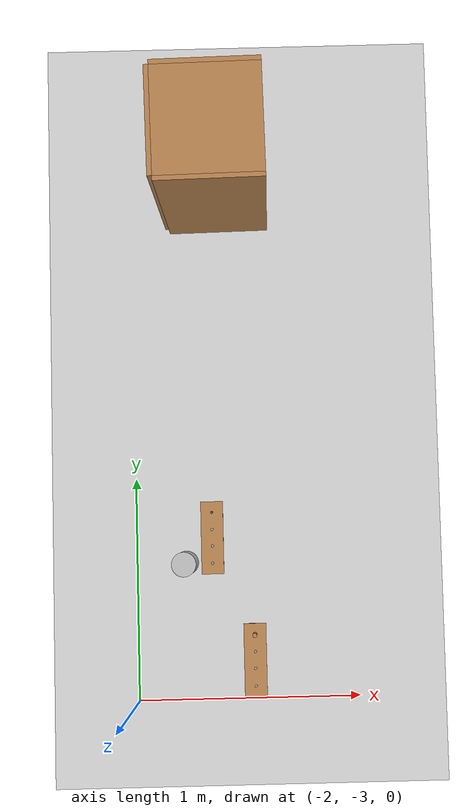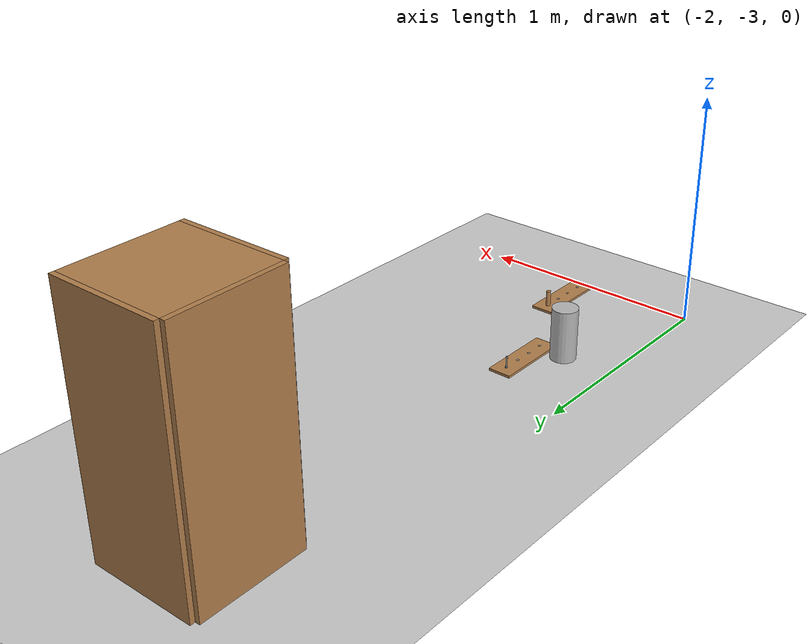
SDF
<sdf version="1.6">
 <world name="default">
  <model name="ground_plane">
   <static>1</static>
   <link name="link">
    <collision name="collision">
     <geometry><plane><normal>0 0 1</normal><size>100 100</size></plane></geometry>
     <surface><friction><ode><mu>100</mu><mu2>50</mu2></ode></friction></surface>
    </collision>
    <visual name="visual">
     <cast_shadows>0</cast_shadows>
     <geometry><plane><normal>0 0 1</normal><size>100 100</size></plane></geometry>
     <material>
      <script><uri>file://media/materials/scripts/gazebo.material</uri><name>Gazebo/Grey</name></script>
     </material>
    </visual>
   </link>
  </model>
  <model name="cabinet">
   <static>1</static>
   <link name="cabinet_bottom_plate">
    <inertial>
     <pose>0 0 -1 0 -0 0</pose>
     <inertia><ixx>2.05</ixx><ixy>0</ixy><ixz>0</ixz><iyy>2.05</iyy><iyz>0</iyz><izz>2.05</izz></inertia>
     <mass>25</mass>
    </inertial>
    <collision name="cabinet_bottom_plate_geom">
     <pose>0 0 0.01 0 -0 0</pose>
     <geometry><box><size>0.45 0.45 0.02</size></box></geometry>
    </collision>
    <visual name="cabinet_bottom_plate_geom_visual">
     <pose>0 0 0.01 0 -0 0</pose>
     <geometry><box><size>0.45 0.45 0.02</size></box></geometry>
     <material>
      <script><uri>file://media/materials/scripts/gazebo.material</uri><name>Gazebo/Wood</name></script>
     </material>
    </visual>
    <collision name="cabinet_bottom_plate_geom_cabinet_back_plate">
     <pose>0.235 0 0.51 0 -0 0</pose>
     <geometry><box><size>0.02 0.45 1.02</size></box></geometry>
    </collision>
    <visual name="cabinet_bottom_plate_geom_cabinet_back_plate_visual">
     <pose>0.235 0 0.51 0 -0 0</pose>
     <geometry><box><size>0.02 0.45 1.02</size></box></geometry>
     <material>
      <script><uri>file://media/materials/scripts/gazebo.material</uri><name>Gazebo/Wood</name></script>
     </material>
    </visual>
    <collision name="cabinet_bottom_plate_geom_cabinet_left_plate">
     <pose>0 0.235 0.51 0 -0 0</pose>
     <geometry><box><size>0.45 0.02 1.02</size></box></geometry>
    </collision>
    <visual name="cabinet_bottom_plate_geom_cabinet_left_plate_visual">
     <pose>0 0.235 0.51 0 -0 0</pose>
     <geometry><box><size>0.45 0.02 1.02</size></box></geometry>
     <material>
      <script><uri>file://media/materials/scripts/gazebo.material</uri><name>Gazebo/Wood</name></script>
     </material>
    </visual>
    <collision name="cabinet_bottom_plate_geom_cabinet_middle_plate">
     <pose>0 0 0.51 0 -0 0</pose>
     <geometry><box><size>0.45 0.45 0.02</size></box></geometry>
    </collision>
    <visual name="cabinet_bottom_plate_geom_cabinet_middle_plate_visual">
     <pose>0 0 0.51 0 -0 0</pose>
     <geometry><box><size>0.45 0.45 0.02</size></box></geometry>
     <material>
      <script><uri>file://media/materials/scripts/gazebo.material</uri><name>Gazebo/Wood</name></script>
     </material>
    </visual>
    <collision name="cabinet_bottom_plate_geom_cabinet_right_plate">
     <pose>0 -0.235 0.51 0 -0 0</pose>
     <geometry><box><size>0.45 0.02 1.02</size></box></geometry>
    </collision>
    <visual name="cabinet_bottom_plate_geom_cabinet_right_plate_visual">
     <pose>0 -0.235 0.51 0 -0 0</pose>
     <geometry><box><size>0.45 0.02 1.02</size></box></geometry>
     <material>
      <script><uri>file://media/materials/scripts/gazebo.material</uri><name>Gazebo/Wood</name></script>
     </material>
    </visual>
    <collision name="cabinet_bottom_plate_geom_cabinet_top_plate">
     <pose>0 0 1.01 0 -0 0</pose>
     <geometry><box><size>0.45 0.45 0.02</size></box></geometry>
    </collision>
    <visual name="cabinet_bottom_plate_geom_cabinet_top_plate_visual">
     <pose>0 0 1.01 0 -0 0</pose>
     <geometry><box><size>0.45 0.45 0.02</size></box></geometry>
     <material>
      <script><uri>file://media/materials/scripts/gazebo.material</uri><name>Gazebo/Wood</name></script>
     </material>
    </visual>
   </link>
   <pose>-1.60346 -0.606793 0 0 0 -3.12567</pose>
  </model>
  <model name="my_ball">
   <link name="link_0">
    <inertial>
     <mass>1</mass>
     <inertia><ixx>0.1</ixx><ixy>0</ixy><ixz>0</ixz><iyy>0.1</iyy><iyz>0</iyz><izz>0.1</izz></inertia>
    </inertial>
    <visual name="visual">
     <geometry><sphere><radius>0.1</radius></sphere></geometry>
     <material>
      <lighting>1</lighting>
      <script><uri>file://media/materials/scripts/gazebo.material</uri><name>Gazebo/Grey</name></script>
      <shader type="pixel"><normal_map>__default__</normal_map></shader>
      <ambient>1 1 1 1</ambient>
      <diffuse>1 1 1 1</diffuse>
      <specular>1 1 1 1</specular>
      <emissive>0 0 0 1</emissive>
     </material>
    </visual>
    <collision name="collision">
     <geometry><sphere><radius>0.1</radius></sphere></geometry>
     <surface>
      <friction>
       <ode><mu>1</mu><mu2>1</mu2><fdir1>0 0 0</fdir1><slip1>0</slip1><slip2>0</slip2></ode>
       <torsional>
        <coefficient>1</coefficient>
        <patch_radius>0</patch_radius>
        <surface_radius>0</surface_radius>
        <use_patch_radius>1</use_patch_radius>
        <ode><slip>0</slip></ode>
       </torsional>
      </friction>
      <bounce><restitution_coefficient>0</restitution_coefficient><threshold>1e+06</threshold></bounce>
      <contact>
       <collide_without_contact>0</collide_without_contact>
       <collide_without_contact_bitmask>1</collide_without_contact_bitmask>
       <collide_bitmask>1</collide_bitmask>
       <ode>
        <soft_cfm>0</soft_cfm>
        <soft_erp>0.2</soft_erp>
        <kp>1e+13</kp>
        <kd>1</kd>
        <max_vel>0.01</max_vel>
        <min_depth>0</min_depth>
       </ode>
       <bullet>
        <split_impulse>1</split_impulse>
        <split_impulse_penetration_threshold>-0.01</split_impulse_penetration_threshold>
        <soft_cfm>0</soft_cfm>
        <soft_erp>0.2</soft_erp>
        <kp>1e+13</kp>
        <kd>1</kd>
       </bullet>
      </contact>
     </surface>
    </collision>
   </link>
   <static>0</static>
   <pose>-1.50345 -0.493286 0.12 0.461158 0.001202 0.001684</pose>
  </model>
  <model name="my_ball_0">
   <link name="link_0">
    <inertial>
     <mass>1</mass>
     <inertia><ixx>0.1</ixx><ixy>0</ixy><ixz>0</ixz><iyy>0.1</iyy><iyz>0</iyz><izz>0.1</izz></inertia>
    </inertial>
    <visual name="visual">
     <geometry><sphere><radius>0.1</radius></sphere></geometry>
     <material>
      <lighting>1</lighting>
      <script><uri>file://media/materials/scripts/gazebo.material</uri><name>Gazebo/Grey</name></script>
      <shader type="pixel"><normal_map>__default__</normal_map></shader>
      <ambient>1 1 1 1</ambient>
      <diffuse>1 1 1 1</diffuse>
      <specular>1 1 1 1</specular>
      <emissive>0 0 0 1</emissive>
     </material>
    </visual>
    <collision name="collision">
     <geometry><sphere><radius>0.1</radius></sphere></geometry>
     <surface>
      <friction>
       <ode><mu>1</mu><mu2>1</mu2><fdir1>0 0 0</fdir1><slip1>0</slip1><slip2>0</slip2></ode>
       <torsional>
        <coefficient>1</coefficient>
        <patch_radius>0</patch_radius>
        <surface_radius>0</surface_radius>
        <use_patch_radius>1</use_patch_radius>
        <ode><slip>0</slip></ode>
       </torsional>
      </friction>
      <bounce><restitution_coefficient>0</restitution_coefficient><threshold>1e+06</threshold></bounce>
      <contact>
       <collide_without_contact>0</collide_without_contact>
       <collide_without_contact_bitmask>1</collide_without_contact_bitmask>
       <collide_bitmask>1</collide_bitmask>
       <ode>
        <soft_cfm>0</soft_cfm>
        <soft_erp>0.2</soft_erp>
        <kp>1e+13</kp>
        <kd>1</kd>
        <max_vel>0.01</max_vel>
        <min_depth>0</min_depth>
       </ode>
       <bullet>
        <split_impulse>1</split_impulse>
        <split_impulse_penetration_threshold>-0.01</split_impulse_penetration_threshold>
        <soft_cfm>0</soft_cfm>
        <soft_erp>0.2</soft_erp>
        <kp>1e+13</kp>
        <kd>1</kd>
       </bullet>
      </contact>
     </surface>
    </collision>
   </link>
   <static>0</static>
   <pose>-1.52826 -0.730598 0.12 0.43637 -0.058735 0.008729</pose>
  </model>
  <model name="beer_2">
   <link name="link">
    <pose>0 0 0.115 0 -0 0</pose>
    <inertial>
     <mass>0.39</mass>
     <inertia><ixx>0.00058</ixx><ixy>0</ixy><ixz>0</ixz><iyy>0.00058</iyy><iyz>0</iyz><izz>0.00019</izz></inertia>
    </inertial>
    <collision name="collision">
     <geometry><cylinder><radius>0.055</radius><length>0.23</length></cylinder></geometry>
    </collision>
    <visual name="visual">
     <geometry><cylinder><radius>0.055</radius><length>0.23</length></cylinder></geometry>
     <material>
      <script>
       <uri>model://beer/materials/scripts</uri>
       <uri>model://beer/materials/textures</uri>
       <name>Beer/Diffuse</name>
      </script>
     </material>
    </visual>
   </link>
   <pose>-1.77801 -2.38525 -2e-06 1e-06 -0 -0.028053</pose>
  </model>
  <model name="metal_peg_board">
   <link name="wooden_board::base">
    <pose>0 0 0.00523 0 -0 0</pose>
    <inertial>
     <mass>0.2765</mass>
     <inertia>
      <ixx>0.0025148</ixx>
      <ixy>0</ixy>
      <ixz>0</ixz>
      <iyy>0.00024037</iyy>
      <iyz>0</iyz>
      <izz>0.00275013</izz>
     </inertia>
    </inertial>
    <collision name="collision">
     <geometry><box><size>0.1016 0.3302 0.01046</size></box></geometry>
     <surface>
      <contact>
       <poissons_ratio>0.347</poissons_ratio>
       <elastic_modulus>8.8e+09</elastic_modulus>
       <ode><kp>100000</kp><kd>100</kd><max_vel>100</max_vel><min_depth>0.001</min_depth></ode>
      </contact>
      <friction>
       <torsional>
        <coefficient>1</coefficient>
        <use_patch_radius>0</use_patch_radius>
        <surface_radius>0.01</surface_radius>
       </torsional>
      </friction>
     </surface>
    </collision>
    <visual name="visual">
     <geometry><box><size>0.1016 0.3302 0.01046</size></box></geometry>
     <material>
      <script><uri>file://media/materials/scripts/gazebo.material</uri><name>Gazebo/Wood</name></script>
     </material>
    </visual>
    <visual name="tee_nut_1">
     <pose>0 -0.116 0 0 -0 0</pose>
     <geometry><cylinder><radius>0.00635</radius><length>0.0105646</length></cylinder></geometry>
     <material>
      <script><uri>file://media/materials/scripts/gazebo.material</uri><name>Gazebo/Grey</name></script>
     </material>
    </visual>
    <visual name="tee_nut_2">
     <pose>0 -0.038 0 0 -0 0</pose>
     <geometry><cylinder><radius>0.00635</radius><length>0.0105646</length></cylinder></geometry>
     <material>
      <script><uri>file://media/materials/scripts/gazebo.material</uri><name>Gazebo/Grey</name></script>
     </material>
    </visual>
    <visual name="tee_nut_3">
     <pose>0 0.038 0 0 -0 0</pose>
     <geometry><cylinder><radius>0.00635</radius><length>0.0105646</length></cylinder></geometry>
     <material>
      <script><uri>file://media/materials/scripts/gazebo.material</uri><name>Gazebo/Grey</name></script>
     </material>
    </visual>
    <visual name="tee_nut_4">
     <pose>0 0.116 0 0 -0 0</pose>
     <geometry><cylinder><radius>0.00635</radius><length>0.0105646</length></cylinder></geometry>
     <material>
      <script><uri>file://media/materials/scripts/gazebo.material</uri><name>Gazebo/Grey</name></script>
     </material>
    </visual>
   </link>
   <link name="peg::link">
    <pose>0 0.116 0.031 0 -0 0</pose>
    <inertial>
     <mass>0.0121</mass>
     <inertia>
      <ixx>3.90898e-06</ixx>
      <ixy>0</ixy>
      <ixz>0</ixz>
      <iyy>3.90898e-06</iyy>
      <iyz>0</iyz>
      <izz>6.58845e-08</izz>
     </inertia>
    </inertial>
    <collision name="collision">
     <geometry><cylinder><radius>0.0033</radius><length>0.062</length></cylinder></geometry>
     <surface>
      <contact>
       <poissons_ratio>0.305</poissons_ratio>
       <elastic_modulus>2e+11</elastic_modulus>
       <ode><kp>100000</kp><kd>100</kd><max_vel>100</max_vel><min_depth>0.001</min_depth></ode>
      </contact>
      <friction>
       <torsional>
        <coefficient>1</coefficient>
        <use_patch_radius>0</use_patch_radius>
        <surface_radius>0.01</surface_radius>
       </torsional>
      </friction>
     </surface>
    </collision>
    <visual name="visual">
     <geometry><cylinder><radius>0.0033</radius><length>0.062</length></cylinder></geometry>
     <material>
      <script><uri>file://media/materials/scripts/gazebo.material</uri><name>Gazebo/Grey</name></script>
     </material>
    </visual>
   </link>
   <joint name="board_peg" type="revolute">
    <parent>wooden_board::base</parent>
    <child>peg::link</child>
    <axis>
     <xyz>0 0 1</xyz>
     <limit><upper>0</upper><lower>0</lower></limit>
     <use_parent_model_frame>0</use_parent_model_frame>
     <dynamics><spring_reference>0</spring_reference><spring_stiffness>0</spring_stiffness></dynamics>
    </axis>
   </joint>
   <pose>-1.65876 -2.27282 -0.001004 1e-05 -0 0</pose>
  </model>
  <model name="wooden_peg_board">
   <link name="wooden_board::base">
    <pose>0 0 0.00523 0 -0 0</pose>
    <inertial>
     <mass>0.2765</mass>
     <inertia>
      <ixx>0.0025148</ixx>
      <ixy>0</ixy>
      <ixz>0</ixz>
      <iyy>0.00024037</iyy>
      <iyz>0</iyz>
      <izz>0.00275013</izz>
     </inertia>
    </inertial>
    <collision name="collision">
     <geometry><box><size>0.1016 0.3302 0.01046</size></box></geometry>
     <surface>
      <contact>
       <poissons_ratio>0.347</poissons_ratio>
       <elastic_modulus>8.8e+09</elastic_modulus>
       <ode><kp>100000</kp><kd>100</kd><max_vel>100</max_vel><min_depth>0.001</min_depth></ode>
      </contact>
      <friction>
       <torsional>
        <coefficient>1</coefficient>
        <use_patch_radius>0</use_patch_radius>
        <surface_radius>0.01</surface_radius>
       </torsional>
      </friction>
     </surface>
    </collision>
    <visual name="visual">
     <geometry><box><size>0.1016 0.3302 0.01046</size></box></geometry>
     <material>
      <script><uri>file://media/materials/scripts/gazebo.material</uri><name>Gazebo/Wood</name></script>
     </material>
    </visual>
    <visual name="tee_nut_1">
     <pose>0 -0.116 0 0 -0 0</pose>
     <geometry><cylinder><radius>0.00635</radius><length>0.0105646</length></cylinder></geometry>
     <material>
      <script><uri>file://media/materials/scripts/gazebo.material</uri><name>Gazebo/Grey</name></script>
     </material>
    </visual>
    <visual name="tee_nut_2">
     <pose>0 -0.038 0 0 -0 0</pose>
     <geometry><cylinder><radius>0.00635</radius><length>0.0105646</length></cylinder></geometry>
     <material>
      <script><uri>file://media/materials/scripts/gazebo.material</uri><name>Gazebo/Grey</name></script>
     </material>
    </visual>
    <visual name="tee_nut_3">
     <pose>0 0.038 0 0 -0 0</pose>
     <geometry><cylinder><radius>0.00635</radius><length>0.0105646</length></cylinder></geometry>
     <material>
      <script><uri>file://media/materials/scripts/gazebo.material</uri><name>Gazebo/Grey</name></script>
     </material>
    </visual>
    <visual name="tee_nut_4">
     <pose>0 0.116 0 0 -0 0</pose>
     <geometry><cylinder><radius>0.00635</radius><length>0.0105646</length></cylinder></geometry>
     <material>
      <script><uri>file://media/materials/scripts/gazebo.material</uri><name>Gazebo/Grey</name></script>
     </material>
    </visual>
   </link>
   <link name="peg::link">
    <pose>0 0.116 0.04 0 -0 0</pose>
    <inertial>
     <mass>0.0175</mass>
     <inertia>
      <ixx>9.74923e-06</ixx>
      <ixy>0</ixy>
      <ixz>0</ixz>
      <iyy>9.74923e-06</iyy>
      <iyz>0</iyz>
      <izz>8.31797e-07</izz>
     </inertia>
    </inertial>
    <collision name="collision">
     <geometry><cylinder><radius>0.00975</radius><length>0.08</length></cylinder></geometry>
     <surface>
      <contact>
       <poissons_ratio>0.347</poissons_ratio>
       <elastic_modulus>8.8e+09</elastic_modulus>
       <ode><kp>100000</kp><kd>100</kd><max_vel>100</max_vel><min_depth>0.001</min_depth></ode>
      </contact>
      <friction>
       <torsional>
        <coefficient>1</coefficient>
        <use_patch_radius>0</use_patch_radius>
        <surface_radius>0.01</surface_radius>
       </torsional>
      </friction>
     </surface>
    </collision>
    <visual name="visual">
     <geometry><cylinder><radius>0.00975</radius><length>0.08</length></cylinder></geometry>
     <material>
      <script><uri>file://media/materials/scripts/gazebo.material</uri><name>Gazebo/Wood</name></script>
     </material>
    </visual>
   </link>
   <joint name="board_peg" type="revolute">
    <parent>wooden_board::base</parent>
    <child>peg::link</child>
    <axis>
     <xyz>0 0 1</xyz>
     <limit><upper>0</upper><lower>0</lower></limit>
     <use_parent_model_frame>0</use_parent_model_frame>
     <dynamics><spring_reference>0</spring_reference><spring_stiffness>0</spring_stiffness></dynamics>
    </axis>
   </joint>
   <pose>-1.47338 -2.83075 -0.001004 1.3e-05 -1e-06 -1e-06</pose>
  </model>
 </world>
</sdf>
